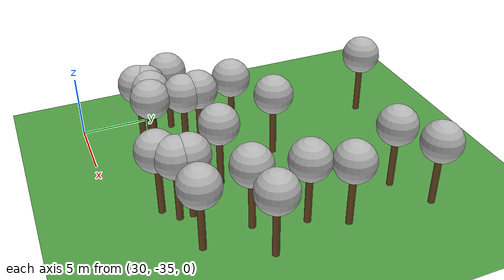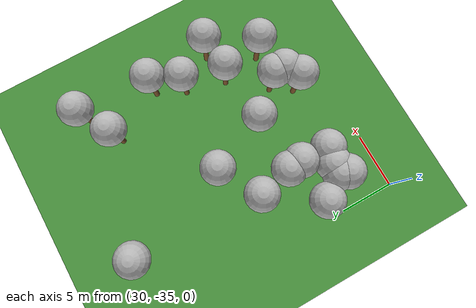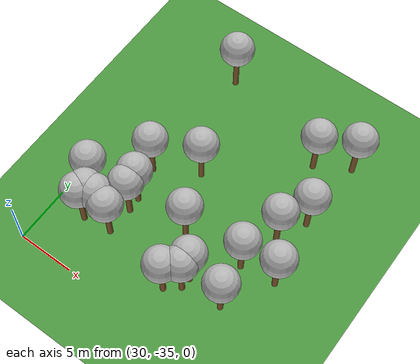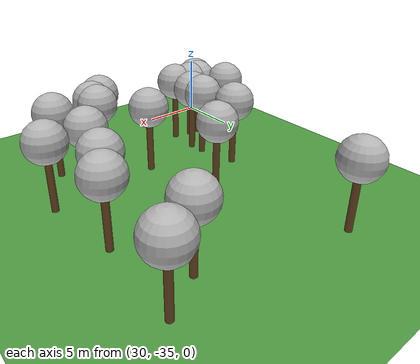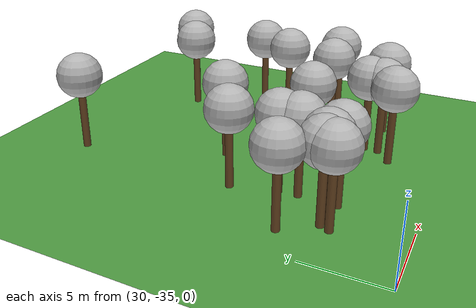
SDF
<sdf version="1.5">
 <world name="default">
  <model name="tree_simple473">
   <static>1</static>
   <link name="link">
    <pose>0 0 0.1 0 -0 0</pose>
    <collision name="collision_trunk">
     <pose>0 0 2 0 -0 0</pose>
     <geometry><cylinder><radius>0.25</radius><length>4</length></cylinder></geometry>
    </collision>
    <collision name="collision_treetop">
     <pose>0 0 5.2 0 -0 0</pose>
     <geometry><sphere><radius>1.5</radius></sphere></geometry>
    </collision>
    <visual name="trunk">
     <pose>0 0 2 0 -0 0</pose>
     <geometry><cylinder><radius>0.25</radius><length>4</length></cylinder></geometry>
     <material>
      <script>
       <uri>model://tree_simple/scripts</uri>
       <uri>model://tree_simple/materials/textures</uri>
       <name>TreeSimple/Trunk</name>
      </script>
     </material>
    </visual>
    <visual name="treetop">
     <pose>0 0 5.2 0 -0 0</pose>
     <geometry><sphere><radius>1.5</radius></sphere></geometry>
     <material>
      <script>
       <uri>model://tree_simple/scripts</uri>
       <uri>model://tree_simple/materials/textures</uri>
       <name>TreeSimple/Treetop</name>
      </script>
     </material>
    </visual>
   </link>
   <pose>35.3600050295 -12.4568326028 0 0 -0 0</pose>
  </model>
  <model name="tree_simple461">
   <static>1</static>
   <link name="link">
    <pose>0 0 0.1 0 -0 0</pose>
    <collision name="collision_trunk">
     <pose>0 0 2 0 -0 0</pose>
     <geometry><cylinder><radius>0.25</radius><length>4</length></cylinder></geometry>
    </collision>
    <collision name="collision_treetop">
     <pose>0 0 5.2 0 -0 0</pose>
     <geometry><sphere><radius>1.5</radius></sphere></geometry>
    </collision>
    <visual name="trunk">
     <pose>0 0 2 0 -0 0</pose>
     <geometry><cylinder><radius>0.25</radius><length>4</length></cylinder></geometry>
     <material>
      <script>
       <uri>model://tree_simple/scripts</uri>
       <uri>model://tree_simple/materials/textures</uri>
       <name>TreeSimple/Trunk</name>
      </script>
     </material>
    </visual>
    <visual name="treetop">
     <pose>0 0 5.2 0 -0 0</pose>
     <geometry><sphere><radius>1.5</radius></sphere></geometry>
     <material>
      <script>
       <uri>model://tree_simple/scripts</uri>
       <uri>model://tree_simple/materials/textures</uri>
       <name>TreeSimple/Treetop</name>
      </script>
     </material>
    </visual>
   </link>
   <pose>48.4583895912 -13.8275705943 0 0 -0 0</pose>
  </model>
  <model name="tree_simple400">
   <static>1</static>
   <link name="link">
    <pose>0 0 0.1 0 -0 0</pose>
    <collision name="collision_trunk">
     <pose>0 0 2 0 -0 0</pose>
     <geometry><cylinder><radius>0.25</radius><length>4</length></cylinder></geometry>
    </collision>
    <collision name="collision_treetop">
     <pose>0 0 5.2 0 -0 0</pose>
     <geometry><sphere><radius>1.5</radius></sphere></geometry>
    </collision>
    <visual name="trunk">
     <pose>0 0 2 0 -0 0</pose>
     <geometry><cylinder><radius>0.25</radius><length>4</length></cylinder></geometry>
     <material>
      <script>
       <uri>model://tree_simple/scripts</uri>
       <uri>model://tree_simple/materials/textures</uri>
       <name>TreeSimple/Trunk</name>
      </script>
     </material>
    </visual>
    <visual name="treetop">
     <pose>0 0 5.2 0 -0 0</pose>
     <geometry><sphere><radius>1.5</radius></sphere></geometry>
     <material>
      <script>
       <uri>model://tree_simple/scripts</uri>
       <uri>model://tree_simple/materials/textures</uri>
       <name>TreeSimple/Treetop</name>
      </script>
     </material>
    </visual>
   </link>
   <pose>43.2651902792 -29.893141503 0 0 -0 0</pose>
  </model>
  <model name="tree_simple390">
   <static>1</static>
   <link name="link">
    <pose>0 0 0.1 0 -0 0</pose>
    <collision name="collision_trunk">
     <pose>0 0 2 0 -0 0</pose>
     <geometry><cylinder><radius>0.25</radius><length>4</length></cylinder></geometry>
    </collision>
    <collision name="collision_treetop">
     <pose>0 0 5.2 0 -0 0</pose>
     <geometry><sphere><radius>1.5</radius></sphere></geometry>
    </collision>
    <visual name="trunk">
     <pose>0 0 2 0 -0 0</pose>
     <geometry><cylinder><radius>0.25</radius><length>4</length></cylinder></geometry>
     <material>
      <script>
       <uri>model://tree_simple/scripts</uri>
       <uri>model://tree_simple/materials/textures</uri>
       <name>TreeSimple/Trunk</name>
      </script>
     </material>
    </visual>
    <visual name="treetop">
     <pose>0 0 5.2 0 -0 0</pose>
     <geometry><sphere><radius>1.5</radius></sphere></geometry>
     <material>
      <script>
       <uri>model://tree_simple/scripts</uri>
       <uri>model://tree_simple/materials/textures</uri>
       <name>TreeSimple/Treetop</name>
      </script>
     </material>
    </visual>
   </link>
   <pose>34.8279648661 -23.7978261523 0 0 -0 0</pose>
  </model>
  <model name="tree_simple379">
   <static>1</static>
   <link name="link">
    <pose>0 0 0.1 0 -0 0</pose>
    <collision name="collision_trunk">
     <pose>0 0 2 0 -0 0</pose>
     <geometry><cylinder><radius>0.25</radius><length>4</length></cylinder></geometry>
    </collision>
    <collision name="collision_treetop">
     <pose>0 0 5.2 0 -0 0</pose>
     <geometry><sphere><radius>1.5</radius></sphere></geometry>
    </collision>
    <visual name="trunk">
     <pose>0 0 2 0 -0 0</pose>
     <geometry><cylinder><radius>0.25</radius><length>4</length></cylinder></geometry>
     <material>
      <script>
       <uri>model://tree_simple/scripts</uri>
       <uri>model://tree_simple/materials/textures</uri>
       <name>TreeSimple/Trunk</name>
      </script>
     </material>
    </visual>
    <visual name="treetop">
     <pose>0 0 5.2 0 -0 0</pose>
     <geometry><sphere><radius>1.5</radius></sphere></geometry>
     <material>
      <script>
       <uri>model://tree_simple/scripts</uri>
       <uri>model://tree_simple/materials/textures</uri>
       <name>TreeSimple/Treetop</name>
      </script>
     </material>
    </visual>
   </link>
   <pose>35.6338366469 -27.9469397224 0 0 -0 0</pose>
  </model>
  <model name="tree_simple374">
   <static>1</static>
   <link name="link">
    <pose>0 0 0.1 0 -0 0</pose>
    <collision name="collision_trunk">
     <pose>0 0 2 0 -0 0</pose>
     <geometry><cylinder><radius>0.25</radius><length>4</length></cylinder></geometry>
    </collision>
    <collision name="collision_treetop">
     <pose>0 0 5.2 0 -0 0</pose>
     <geometry><sphere><radius>1.5</radius></sphere></geometry>
    </collision>
    <visual name="trunk">
     <pose>0 0 2 0 -0 0</pose>
     <geometry><cylinder><radius>0.25</radius><length>4</length></cylinder></geometry>
     <material>
      <script>
       <uri>model://tree_simple/scripts</uri>
       <uri>model://tree_simple/materials/textures</uri>
       <name>TreeSimple/Trunk</name>
      </script>
     </material>
    </visual>
    <visual name="treetop">
     <pose>0 0 5.2 0 -0 0</pose>
     <geometry><sphere><radius>1.5</radius></sphere></geometry>
     <material>
      <script>
       <uri>model://tree_simple/scripts</uri>
       <uri>model://tree_simple/materials/textures</uri>
       <name>TreeSimple/Treetop</name>
      </script>
     </material>
    </visual>
   </link>
   <pose>45.5880490305 -15.4743351493 0 0 -0 0</pose>
  </model>
  <model name="tree_simple361">
   <static>1</static>
   <link name="link">
    <pose>0 0 0.1 0 -0 0</pose>
    <collision name="collision_trunk">
     <pose>0 0 2 0 -0 0</pose>
     <geometry><cylinder><radius>0.25</radius><length>4</length></cylinder></geometry>
    </collision>
    <collision name="collision_treetop">
     <pose>0 0 5.2 0 -0 0</pose>
     <geometry><sphere><radius>1.5</radius></sphere></geometry>
    </collision>
    <visual name="trunk">
     <pose>0 0 2 0 -0 0</pose>
     <geometry><cylinder><radius>0.25</radius><length>4</length></cylinder></geometry>
     <material>
      <script>
       <uri>model://tree_simple/scripts</uri>
       <uri>model://tree_simple/materials/textures</uri>
       <name>TreeSimple/Trunk</name>
      </script>
     </material>
    </visual>
    <visual name="treetop">
     <pose>0 0 5.2 0 -0 0</pose>
     <geometry><sphere><radius>1.5</radius></sphere></geometry>
     <material>
      <script>
       <uri>model://tree_simple/scripts</uri>
       <uri>model://tree_simple/materials/textures</uri>
       <name>TreeSimple/Treetop</name>
      </script>
     </material>
    </visual>
   </link>
   <pose>35.5366757962 -26.7239082098 0 0 -0 0</pose>
  </model>
  <model name="tree_simple330">
   <static>1</static>
   <link name="link">
    <pose>0 0 0.1 0 -0 0</pose>
    <collision name="collision_trunk">
     <pose>0 0 2 0 -0 0</pose>
     <geometry><cylinder><radius>0.25</radius><length>4</length></cylinder></geometry>
    </collision>
    <collision name="collision_treetop">
     <pose>0 0 5.2 0 -0 0</pose>
     <geometry><sphere><radius>1.5</radius></sphere></geometry>
    </collision>
    <visual name="trunk">
     <pose>0 0 2 0 -0 0</pose>
     <geometry><cylinder><radius>0.25</radius><length>4</length></cylinder></geometry>
     <material>
      <script>
       <uri>model://tree_simple/scripts</uri>
       <uri>model://tree_simple/materials/textures</uri>
       <name>TreeSimple/Trunk</name>
      </script>
     </material>
    </visual>
    <visual name="treetop">
     <pose>0 0 5.2 0 -0 0</pose>
     <geometry><sphere><radius>1.5</radius></sphere></geometry>
     <material>
      <script>
       <uri>model://tree_simple/scripts</uri>
       <uri>model://tree_simple/materials/textures</uri>
       <name>TreeSimple/Treetop</name>
      </script>
     </material>
    </visual>
   </link>
   <pose>46.6176543064 -30.3534647409 0 0 -0 0</pose>
  </model>
  <model name="tree_simple321">
   <static>1</static>
   <link name="link">
    <pose>0 0 0.1 0 -0 0</pose>
    <collision name="collision_trunk">
     <pose>0 0 2 0 -0 0</pose>
     <geometry><cylinder><radius>0.25</radius><length>4</length></cylinder></geometry>
    </collision>
    <collision name="collision_treetop">
     <pose>0 0 5.2 0 -0 0</pose>
     <geometry><sphere><radius>1.5</radius></sphere></geometry>
    </collision>
    <visual name="trunk">
     <pose>0 0 2 0 -0 0</pose>
     <geometry><cylinder><radius>0.25</radius><length>4</length></cylinder></geometry>
     <material>
      <script>
       <uri>model://tree_simple/scripts</uri>
       <uri>model://tree_simple/materials/textures</uri>
       <name>TreeSimple/Trunk</name>
      </script>
     </material>
    </visual>
    <visual name="treetop">
     <pose>0 0 5.2 0 -0 0</pose>
     <geometry><sphere><radius>1.5</radius></sphere></geometry>
     <material>
      <script>
       <uri>model://tree_simple/scripts</uri>
       <uri>model://tree_simple/materials/textures</uri>
       <name>TreeSimple/Treetop</name>
      </script>
     </material>
    </visual>
   </link>
   <pose>42.046648374 -31.7938593585 0 0 -0 0</pose>
  </model>
  <model name="tree_simple298">
   <static>1</static>
   <link name="link">
    <pose>0 0 0.1 0 -0 0</pose>
    <collision name="collision_trunk">
     <pose>0 0 2 0 -0 0</pose>
     <geometry><cylinder><radius>0.25</radius><length>4</length></cylinder></geometry>
    </collision>
    <collision name="collision_treetop">
     <pose>0 0 5.2 0 -0 0</pose>
     <geometry><sphere><radius>1.5</radius></sphere></geometry>
    </collision>
    <visual name="trunk">
     <pose>0 0 2 0 -0 0</pose>
     <geometry><cylinder><radius>0.25</radius><length>4</length></cylinder></geometry>
     <material>
      <script>
       <uri>model://tree_simple/scripts</uri>
       <uri>model://tree_simple/materials/textures</uri>
       <name>TreeSimple/Trunk</name>
      </script>
     </material>
    </visual>
    <visual name="treetop">
     <pose>0 0 5.2 0 -0 0</pose>
     <geometry><sphere><radius>1.5</radius></sphere></geometry>
     <material>
      <script>
       <uri>model://tree_simple/scripts</uri>
       <uri>model://tree_simple/materials/textures</uri>
       <name>TreeSimple/Treetop</name>
      </script>
     </material>
    </visual>
   </link>
   <pose>33.2901714534 -30.1267743678 0 0 -0 0</pose>
  </model>
  <model name="tree_simple278">
   <static>1</static>
   <link name="link">
    <pose>0 0 0.1 0 -0 0</pose>
    <collision name="collision_trunk">
     <pose>0 0 2 0 -0 0</pose>
     <geometry><cylinder><radius>0.25</radius><length>4</length></cylinder></geometry>
    </collision>
    <collision name="collision_treetop">
     <pose>0 0 5.2 0 -0 0</pose>
     <geometry><sphere><radius>1.5</radius></sphere></geometry>
    </collision>
    <visual name="trunk">
     <pose>0 0 2 0 -0 0</pose>
     <geometry><cylinder><radius>0.25</radius><length>4</length></cylinder></geometry>
     <material>
      <script>
       <uri>model://tree_simple/scripts</uri>
       <uri>model://tree_simple/materials/textures</uri>
       <name>TreeSimple/Trunk</name>
      </script>
     </material>
    </visual>
    <visual name="treetop">
     <pose>0 0 5.2 0 -0 0</pose>
     <geometry><sphere><radius>1.5</radius></sphere></geometry>
     <material>
      <script>
       <uri>model://tree_simple/scripts</uri>
       <uri>model://tree_simple/materials/textures</uri>
       <name>TreeSimple/Treetop</name>
      </script>
     </material>
    </visual>
   </link>
   <pose>38.4116061074 -21.7404675264 0 0 -0 0</pose>
  </model>
  <model name="tree_simple263">
   <static>1</static>
   <link name="link">
    <pose>0 0 0.1 0 -0 0</pose>
    <collision name="collision_trunk">
     <pose>0 0 2 0 -0 0</pose>
     <geometry><cylinder><radius>0.25</radius><length>4</length></cylinder></geometry>
    </collision>
    <collision name="collision_treetop">
     <pose>0 0 5.2 0 -0 0</pose>
     <geometry><sphere><radius>1.5</radius></sphere></geometry>
    </collision>
    <visual name="trunk">
     <pose>0 0 2 0 -0 0</pose>
     <geometry><cylinder><radius>0.25</radius><length>4</length></cylinder></geometry>
     <material>
      <script>
       <uri>model://tree_simple/scripts</uri>
       <uri>model://tree_simple/materials/textures</uri>
       <name>TreeSimple/Trunk</name>
      </script>
     </material>
    </visual>
    <visual name="treetop">
     <pose>0 0 5.2 0 -0 0</pose>
     <geometry><sphere><radius>1.5</radius></sphere></geometry>
     <material>
      <script>
       <uri>model://tree_simple/scripts</uri>
       <uri>model://tree_simple/materials/textures</uri>
       <name>TreeSimple/Treetop</name>
      </script>
     </material>
    </visual>
   </link>
   <pose>40.6294575453 -26.8945764261 0 0 -0 0</pose>
  </model>
  <model name="tree_simple243">
   <static>1</static>
   <link name="link">
    <pose>0 0 0.1 0 -0 0</pose>
    <collision name="collision_trunk">
     <pose>0 0 2 0 -0 0</pose>
     <geometry><cylinder><radius>0.25</radius><length>4</length></cylinder></geometry>
    </collision>
    <collision name="collision_treetop">
     <pose>0 0 5.2 0 -0 0</pose>
     <geometry><sphere><radius>1.5</radius></sphere></geometry>
    </collision>
    <visual name="trunk">
     <pose>0 0 2 0 -0 0</pose>
     <geometry><cylinder><radius>0.25</radius><length>4</length></cylinder></geometry>
     <material>
      <script>
       <uri>model://tree_simple/scripts</uri>
       <uri>model://tree_simple/materials/textures</uri>
       <name>TreeSimple/Trunk</name>
      </script>
     </material>
    </visual>
    <visual name="treetop">
     <pose>0 0 5.2 0 -0 0</pose>
     <geometry><sphere><radius>1.5</radius></sphere></geometry>
     <material>
      <script>
       <uri>model://tree_simple/scripts</uri>
       <uri>model://tree_simple/materials/textures</uri>
       <name>TreeSimple/Treetop</name>
      </script>
     </material>
    </visual>
   </link>
   <pose>48.9656449897 -26.1871742827 0 0 -0 0</pose>
  </model>
  <model name="tree_simple206">
   <static>1</static>
   <link name="link">
    <pose>0 0 0.1 0 -0 0</pose>
    <collision name="collision_trunk">
     <pose>0 0 2 0 -0 0</pose>
     <geometry><cylinder><radius>0.25</radius><length>4</length></cylinder></geometry>
    </collision>
    <collision name="collision_treetop">
     <pose>0 0 5.2 0 -0 0</pose>
     <geometry><sphere><radius>1.5</radius></sphere></geometry>
    </collision>
    <visual name="trunk">
     <pose>0 0 2 0 -0 0</pose>
     <geometry><cylinder><radius>0.25</radius><length>4</length></cylinder></geometry>
     <material>
      <script>
       <uri>model://tree_simple/scripts</uri>
       <uri>model://tree_simple/materials/textures</uri>
       <name>TreeSimple/Trunk</name>
      </script>
     </material>
    </visual>
    <visual name="treetop">
     <pose>0 0 5.2 0 -0 0</pose>
     <geometry><sphere><radius>1.5</radius></sphere></geometry>
     <material>
      <script>
       <uri>model://tree_simple/scripts</uri>
       <uri>model://tree_simple/materials/textures</uri>
       <name>TreeSimple/Treetop</name>
      </script>
     </material>
    </visual>
   </link>
   <pose>46.8540816615 -22.8682209639 0 0 -0 0</pose>
  </model>
  <model name="tree_simple185">
   <static>1</static>
   <link name="link">
    <pose>0 0 0.1 0 -0 0</pose>
    <collision name="collision_trunk">
     <pose>0 0 2 0 -0 0</pose>
     <geometry><cylinder><radius>0.25</radius><length>4</length></cylinder></geometry>
    </collision>
    <collision name="collision_treetop">
     <pose>0 0 5.2 0 -0 0</pose>
     <geometry><sphere><radius>1.5</radius></sphere></geometry>
    </collision>
    <visual name="trunk">
     <pose>0 0 2 0 -0 0</pose>
     <geometry><cylinder><radius>0.25</radius><length>4</length></cylinder></geometry>
     <material>
      <script>
       <uri>model://tree_simple/scripts</uri>
       <uri>model://tree_simple/materials/textures</uri>
       <name>TreeSimple/Trunk</name>
      </script>
     </material>
    </visual>
    <visual name="treetop">
     <pose>0 0 5.2 0 -0 0</pose>
     <geometry><sphere><radius>1.5</radius></sphere></geometry>
     <material>
      <script>
       <uri>model://tree_simple/scripts</uri>
       <uri>model://tree_simple/materials/textures</uri>
       <name>TreeSimple/Treetop</name>
      </script>
     </material>
    </visual>
   </link>
   <pose>48.1272235893 -20.3232479012 0 0 -0 0</pose>
  </model>
  <model name="tree_simple179">
   <static>1</static>
   <link name="link">
    <pose>0 0 0.1 0 -0 0</pose>
    <collision name="collision_trunk">
     <pose>0 0 2 0 -0 0</pose>
     <geometry><cylinder><radius>0.25</radius><length>4</length></cylinder></geometry>
    </collision>
    <collision name="collision_treetop">
     <pose>0 0 5.2 0 -0 0</pose>
     <geometry><sphere><radius>1.5</radius></sphere></geometry>
    </collision>
    <visual name="trunk">
     <pose>0 0 2 0 -0 0</pose>
     <geometry><cylinder><radius>0.25</radius><length>4</length></cylinder></geometry>
     <material>
      <script>
       <uri>model://tree_simple/scripts</uri>
       <uri>model://tree_simple/materials/textures</uri>
       <name>TreeSimple/Trunk</name>
      </script>
     </material>
    </visual>
    <visual name="treetop">
     <pose>0 0 5.2 0 -0 0</pose>
     <geometry><sphere><radius>1.5</radius></sphere></geometry>
     <material>
      <script>
       <uri>model://tree_simple/scripts</uri>
       <uri>model://tree_simple/materials/textures</uri>
       <name>TreeSimple/Treetop</name>
      </script>
     </material>
    </visual>
   </link>
   <pose>33.0376036796 -30.7285936232 0 0 -0 0</pose>
  </model>
  <model name="tree_simple133">
   <static>1</static>
   <link name="link">
    <pose>0 0 0.1 0 -0 0</pose>
    <collision name="collision_trunk">
     <pose>0 0 2 0 -0 0</pose>
     <geometry><cylinder><radius>0.25</radius><length>4</length></cylinder></geometry>
    </collision>
    <collision name="collision_treetop">
     <pose>0 0 5.2 0 -0 0</pose>
     <geometry><sphere><radius>1.5</radius></sphere></geometry>
    </collision>
    <visual name="trunk">
     <pose>0 0 2 0 -0 0</pose>
     <geometry><cylinder><radius>0.25</radius><length>4</length></cylinder></geometry>
     <material>
      <script>
       <uri>model://tree_simple/scripts</uri>
       <uri>model://tree_simple/materials/textures</uri>
       <name>TreeSimple/Trunk</name>
      </script>
     </material>
    </visual>
    <visual name="treetop">
     <pose>0 0 5.2 0 -0 0</pose>
     <geometry><sphere><radius>1.5</radius></sphere></geometry>
     <material>
      <script>
       <uri>model://tree_simple/scripts</uri>
       <uri>model://tree_simple/materials/textures</uri>
       <name>TreeSimple/Treetop</name>
      </script>
     </material>
    </visual>
   </link>
   <pose>34.1791859659 -30.0610700111 0 0 -0 0</pose>
  </model>
  <model name="tree_simple128">
   <static>1</static>
   <link name="link">
    <pose>0 0 0.1 0 -0 0</pose>
    <collision name="collision_trunk">
     <pose>0 0 2 0 -0 0</pose>
     <geometry><cylinder><radius>0.25</radius><length>4</length></cylinder></geometry>
    </collision>
    <collision name="collision_treetop">
     <pose>0 0 5.2 0 -0 0</pose>
     <geometry><sphere><radius>1.5</radius></sphere></geometry>
    </collision>
    <visual name="trunk">
     <pose>0 0 2 0 -0 0</pose>
     <geometry><cylinder><radius>0.25</radius><length>4</length></cylinder></geometry>
     <material>
      <script>
       <uri>model://tree_simple/scripts</uri>
       <uri>model://tree_simple/materials/textures</uri>
       <name>TreeSimple/Trunk</name>
      </script>
     </material>
    </visual>
    <visual name="treetop">
     <pose>0 0 5.2 0 -0 0</pose>
     <geometry><sphere><radius>1.5</radius></sphere></geometry>
     <material>
      <script>
       <uri>model://tree_simple/scripts</uri>
       <uri>model://tree_simple/materials/textures</uri>
       <name>TreeSimple/Treetop</name>
      </script>
     </material>
    </visual>
   </link>
   <pose>45.9201829733 -26.5855260125 0 0 -0 0</pose>
  </model>
  <model name="tree_simple57">
   <static>1</static>
   <link name="link">
    <pose>0 0 0.1 0 -0 0</pose>
    <collision name="collision_trunk">
     <pose>0 0 2 0 -0 0</pose>
     <geometry><cylinder><radius>0.25</radius><length>4</length></cylinder></geometry>
    </collision>
    <collision name="collision_treetop">
     <pose>0 0 5.2 0 -0 0</pose>
     <geometry><sphere><radius>1.5</radius></sphere></geometry>
    </collision>
    <visual name="trunk">
     <pose>0 0 2 0 -0 0</pose>
     <geometry><cylinder><radius>0.25</radius><length>4</length></cylinder></geometry>
     <material>
      <script>
       <uri>model://tree_simple/scripts</uri>
       <uri>model://tree_simple/materials/textures</uri>
       <name>TreeSimple/Trunk</name>
      </script>
     </material>
    </visual>
    <visual name="treetop">
     <pose>0 0 5.2 0 -0 0</pose>
     <geometry><sphere><radius>1.5</radius></sphere></geometry>
     <material>
      <script>
       <uri>model://tree_simple/scripts</uri>
       <uri>model://tree_simple/materials/textures</uri>
       <name>TreeSimple/Treetop</name>
      </script>
     </material>
    </visual>
   </link>
   <pose>43.2092275704 -30.8438737216 0 0 -0 0</pose>
  </model>
  <model name="tree_simple9">
   <static>1</static>
   <link name="link">
    <pose>0 0 0.1 0 -0 0</pose>
    <collision name="collision_trunk">
     <pose>0 0 2 0 -0 0</pose>
     <geometry><cylinder><radius>0.25</radius><length>4</length></cylinder></geometry>
    </collision>
    <collision name="collision_treetop">
     <pose>0 0 5.2 0 -0 0</pose>
     <geometry><sphere><radius>1.5</radius></sphere></geometry>
    </collision>
    <visual name="trunk">
     <pose>0 0 2 0 -0 0</pose>
     <geometry><cylinder><radius>0.25</radius><length>4</length></cylinder></geometry>
     <material>
      <script>
       <uri>model://tree_simple/scripts</uri>
       <uri>model://tree_simple/materials/textures</uri>
       <name>TreeSimple/Trunk</name>
      </script>
     </material>
    </visual>
    <visual name="treetop">
     <pose>0 0 5.2 0 -0 0</pose>
     <geometry><sphere><radius>1.5</radius></sphere></geometry>
     <material>
      <script>
       <uri>model://tree_simple/scripts</uri>
       <uri>model://tree_simple/materials/textures</uri>
       <name>TreeSimple/Treetop</name>
      </script>
     </material>
    </visual>
   </link>
   <pose>31.866196036 -28.0908269066 0 0 -0 0</pose>
  </model>
  <model name="tree_simple1">
   <static>1</static>
   <link name="link">
    <pose>0 0 0.1 0 -0 0</pose>
    <collision name="collision_trunk">
     <pose>0 0 2 0 -0 0</pose>
     <geometry><cylinder><radius>0.25</radius><length>4</length></cylinder></geometry>
    </collision>
    <collision name="collision_treetop">
     <pose>0 0 5.2 0 -0 0</pose>
     <geometry><sphere><radius>1.5</radius></sphere></geometry>
    </collision>
    <visual name="trunk">
     <pose>0 0 2 0 -0 0</pose>
     <geometry><cylinder><radius>0.25</radius><length>4</length></cylinder></geometry>
     <material>
      <script>
       <uri>model://tree_simple/scripts</uri>
       <uri>model://tree_simple/materials/textures</uri>
       <name>TreeSimple/Trunk</name>
      </script>
     </material>
    </visual>
    <visual name="treetop">
     <pose>0 0 5.2 0 -0 0</pose>
     <geometry><sphere><radius>1.5</radius></sphere></geometry>
     <material>
      <script>
       <uri>model://tree_simple/scripts</uri>
       <uri>model://tree_simple/materials/textures</uri>
       <name>TreeSimple/Treetop</name>
      </script>
     </material>
    </visual>
   </link>
   <pose>35.5272832609 -30.417089687 0 0 -0 0</pose>
  </model>
  <model name="ground_plane">
   <static>true</static>
   <link name="link">
    <collision name="collision">
     <geometry><plane><normal>0 0 1</normal><size>250 250</size></plane></geometry>
     <surface><friction><ode><mu>1</mu><mu2>1</mu2></ode></friction></surface>
    </collision>
    <visual name="grass">
     <cast_shadows>false</cast_shadows>
     <geometry><plane><normal>0 0 1</normal><size>150 250</size></plane></geometry>
     <material>
      <script><uri>file://media/materials/scripts/Gazebo.material</uri><name>Gazebo/Grass</name></script>
     </material>
    </visual>
   </link>
  </model>
 </world>
</sdf>
